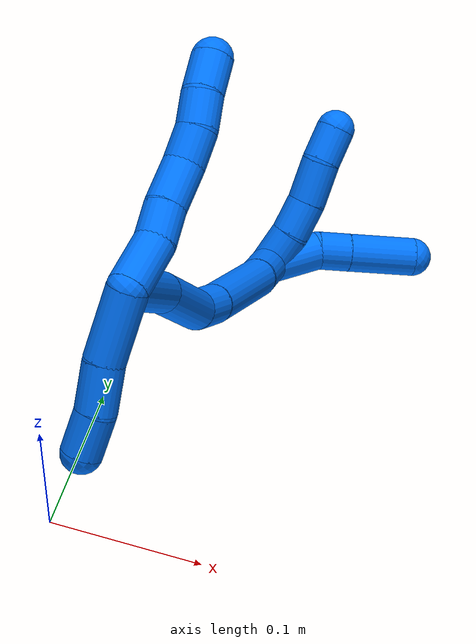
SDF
<sdf version="1.7">
 <world name="default">
  <model name="14">
   <static>0</static>
   <link name="14">
    <collision name="collision-cylinder-e_1_2_8">
     <pose>0.001563 0.009326 0.013755 -0.595826 0.093777 -0.028813</pose>
     <geometry><cylinder><radius>0.0125</radius><length>0.033385</length></cylinder></geometry>
     <surface>
      <friction><ode><mu>1.16</mu><mu2>1.16</mu2><slip1>0</slip1><slip2>0</slip2></ode></friction>
      <contact><ode><kp>1e+06</kp><kd>1</kd><max_vel>0</max_vel><min_depth>0.001</min_depth></ode></contact>
     </surface>
    </collision>
    <visual name="visual-cylinder-e_1_2_8">
     <pose>0.001563 0.009326 0.013755 -0.595826 0.093777 -0.028813</pose>
     <geometry><cylinder><radius>0.0125</radius><length>0.033385</length></cylinder></geometry>
     <material><ambient>0 0.462745 1 1</ambient></material>
    </visual>
    <collision name="collision-cylinder-e_2_8_9">
     <pose>0.001261 0.024887 0.036495 -0.606559 -0.168957 0.052986</pose>
     <geometry><cylinder><radius>0.0125</radius><length>0.022187</length></cylinder></geometry>
     <surface>
      <friction><ode><mu>1.16</mu><mu2>1.16</mu2><slip1>0</slip1><slip2>0</slip2></ode></friction>
      <contact><ode><kp>1e+06</kp><kd>1</kd><max_vel>0</max_vel><min_depth>0.001</min_depth></ode></contact>
     </surface>
    </collision>
    <visual name="visual-cylinder-e_2_8_9">
     <pose>0.001261 0.024887 0.036495 -0.606559 -0.168957 0.052986</pose>
     <geometry><cylinder><radius>0.0125</radius><length>0.022187</length></cylinder></geometry>
     <material><ambient>0 0.462745 1 1</ambient></material>
    </visual>
    <collision name="collision-cylinder-e_3_9_10">
     <pose>-0.001441 0.038524 0.057348 -0.557778 -0.059743 0.017112</pose>
     <geometry><cylinder><radius>0.0125</radius><length>0.028025</length></cylinder></geometry>
     <surface>
      <friction><ode><mu>1.16</mu><mu2>1.16</mu2><slip1>0</slip1><slip2>0</slip2></ode></friction>
      <contact><ode><kp>1e+06</kp><kd>1</kd><max_vel>0</max_vel><min_depth>0.001</min_depth></ode></contact>
     </surface>
    </collision>
    <visual name="visual-cylinder-e_3_9_10">
     <pose>-0.001441 0.038524 0.057348 -0.557778 -0.059743 0.017112</pose>
     <geometry><cylinder><radius>0.0125</radius><length>0.028025</length></cylinder></geometry>
     <material><ambient>0 0.462745 1 1</ambient></material>
    </visual>
    <collision name="collision-cylinder-e_4_10_11">
     <pose>-0.004897 0.050055 0.07896 -0.400596 -0.242629 0.049492</pose>
     <geometry><cylinder><radius>0.0125</radius><length>0.021805</length></cylinder></geometry>
     <surface>
      <friction><ode><mu>1.16</mu><mu2>1.16</mu2><slip1>0</slip1><slip2>0</slip2></ode></friction>
      <contact><ode><kp>1e+06</kp><kd>1</kd><max_vel>0</max_vel><min_depth>0.001</min_depth></ode></contact>
     </surface>
    </collision>
    <visual name="visual-cylinder-e_4_10_11">
     <pose>-0.004897 0.050055 0.07896 -0.400596 -0.242629 0.049492</pose>
     <geometry><cylinder><radius>0.0125</radius><length>0.021805</length></cylinder></geometry>
     <material><ambient>0 0.462745 1 1</ambient></material>
    </visual>
    <collision name="collision-cylinder-e_5_11_12">
     <pose>-0.011002 0.059665 0.097004 -0.583851 -0.337009 0.102156</pose>
     <geometry><cylinder><radius>0.0125</radius><length>0.021079</length></cylinder></geometry>
     <surface>
      <friction><ode><mu>1.16</mu><mu2>1.16</mu2><slip1>0</slip1><slip2>0</slip2></ode></friction>
      <contact><ode><kp>1e+06</kp><kd>1</kd><max_vel>0</max_vel><min_depth>0.001</min_depth></ode></contact>
     </surface>
    </collision>
    <visual name="visual-cylinder-e_5_11_12">
     <pose>-0.011002 0.059665 0.097004 -0.583851 -0.337009 0.102156</pose>
     <geometry><cylinder><radius>0.0125</radius><length>0.021079</length></cylinder></geometry>
     <material><ambient>0 0.462745 1 1</ambient></material>
    </visual>
    <collision name="collision-cylinder-e_6_12_6">
     <pose>-0.01636 0.072204 0.114522 -0.653291 -0.159948 0.05429</pose>
     <geometry><cylinder><radius>0.0125</radius><length>0.02352</length></cylinder></geometry>
     <surface>
      <friction><ode><mu>1.16</mu><mu2>1.16</mu2><slip1>0</slip1><slip2>0</slip2></ode></friction>
      <contact><ode><kp>1e+06</kp><kd>1</kd><max_vel>0</max_vel><min_depth>0.001</min_depth></ode></contact>
     </surface>
    </collision>
    <visual name="visual-cylinder-e_6_12_6">
     <pose>-0.01636 0.072204 0.114522 -0.653291 -0.159948 0.05429</pose>
     <geometry><cylinder><radius>0.0125</radius><length>0.02352</length></cylinder></geometry>
     <material><ambient>0 0.462745 1 1</ambient></material>
    </visual>
    <collision name="collision-cylinder-e_1_2_13">
     <pose>0.010406 -0.000736 -0.01939 3.10366 0.492254 2.99089</pose>
     <geometry><cylinder><radius>0.0125</radius><length>0.044035</length></cylinder></geometry>
     <surface>
      <friction><ode><mu>1.16</mu><mu2>1.16</mu2><slip1>0</slip1><slip2>0</slip2></ode></friction>
      <contact><ode><kp>1e+06</kp><kd>1</kd><max_vel>0</max_vel><min_depth>0.001</min_depth></ode></contact>
     </surface>
    </collision>
    <visual name="visual-cylinder-e_1_2_13">
     <pose>0.010406 -0.000736 -0.01939 3.10366 0.492254 2.99089</pose>
     <geometry><cylinder><radius>0.0125</radius><length>0.044035</length></cylinder></geometry>
     <material><ambient>0 0.462745 1 1</ambient></material>
    </visual>
    <collision name="collision-cylinder-e_2_13_14">
     <pose>0.029295 -0.003022 -0.050744 3.01272 0.612827 2.73921</pose>
     <geometry><cylinder><radius>0.0125</radius><length>0.029498</length></cylinder></geometry>
     <surface>
      <friction><ode><mu>1.16</mu><mu2>1.16</mu2><slip1>0</slip1><slip2>0</slip2></ode></friction>
      <contact><ode><kp>1e+06</kp><kd>1</kd><max_vel>0</max_vel><min_depth>0.001</min_depth></ode></contact>
     </surface>
    </collision>
    <visual name="visual-cylinder-e_2_13_14">
     <pose>0.029295 -0.003022 -0.050744 3.01272 0.612827 2.73921</pose>
     <geometry><cylinder><radius>0.0125</radius><length>0.029498</length></cylinder></geometry>
     <material><ambient>0 0.462745 1 1</ambient></material>
    </visual>
    <collision name="collision-cylinder-e_3_14_5">
     <pose>0.044272 -0.003902 -0.074221 -3.08338 0.512852 -2.9204</pose>
     <geometry><cylinder><radius>0.0125</radius><length>0.026466</length></cylinder></geometry>
     <surface>
      <friction><ode><mu>1.16</mu><mu2>1.16</mu2><slip1>0</slip1><slip2>0</slip2></ode></friction>
      <contact><ode><kp>1e+06</kp><kd>1</kd><max_vel>0</max_vel><min_depth>0.001</min_depth></ode></contact>
     </surface>
    </collision>
    <visual name="visual-cylinder-e_3_14_5">
     <pose>0.044272 -0.003902 -0.074221 -3.08338 0.512852 -2.9204</pose>
     <geometry><cylinder><radius>0.0125</radius><length>0.026466</length></cylinder></geometry>
     <material><ambient>0 0.462745 1 1</ambient></material>
    </visual>
    <collision name="collision-cylinder-e_1_2_15">
     <pose>0.028168 0.032151 0.003093 -1.47488 0.71718 -0.656308</pose>
     <geometry><cylinder><radius>0.0125</radius><length>0.085714</length></cylinder></geometry>
     <surface>
      <friction><ode><mu>1.16</mu><mu2>1.16</mu2><slip1>0</slip1><slip2>0</slip2></ode></friction>
      <contact><ode><kp>1e+06</kp><kd>1</kd><max_vel>0</max_vel><min_depth>0.001</min_depth></ode></contact>
     </surface>
    </collision>
    <visual name="visual-cylinder-e_1_2_15">
     <pose>0.028168 0.032151 0.003093 -1.47488 0.71718 -0.656308</pose>
     <geometry><cylinder><radius>0.0125</radius><length>0.085714</length></cylinder></geometry>
     <material><ambient>0 0.462745 1 1</ambient></material>
    </visual>
    <collision name="collision-cylinder-e_2_15_16">
     <pose>0.08279 0.085813 0.007923 -1.49025 0.886505 -0.825631</pose>
     <geometry><cylinder><radius>0.0125</radius><length>0.068278</length></cylinder></geometry>
     <surface>
      <friction><ode><mu>1.16</mu><mu2>1.16</mu2><slip1>0</slip1><slip2>0</slip2></ode></friction>
      <contact><ode><kp>1e+06</kp><kd>1</kd><max_vel>0</max_vel><min_depth>0.001</min_depth></ode></contact>
     </surface>
    </collision>
    <visual name="visual-cylinder-e_2_15_16">
     <pose>0.08279 0.085813 0.007923 -1.49025 0.886505 -0.825631</pose>
     <geometry><cylinder><radius>0.0125</radius><length>0.068278</length></cylinder></geometry>
     <material><ambient>0 0.462745 1 1</ambient></material>
    </visual>
    <collision name="collision-cylinder-e_3_16_17">
     <pose>0.117671 0.115587 0.014131 -1.07488 0.731109 -0.448538</pose>
     <geometry><cylinder><radius>0.0125</radius><length>0.025244</length></cylinder></geometry>
     <surface>
      <friction><ode><mu>1.16</mu><mu2>1.16</mu2><slip1>0</slip1><slip2>0</slip2></ode></friction>
      <contact><ode><kp>1e+06</kp><kd>1</kd><max_vel>0</max_vel><min_depth>0.001</min_depth></ode></contact>
     </surface>
    </collision>
    <visual name="visual-cylinder-e_3_16_17">
     <pose>0.117671 0.115587 0.014131 -1.07488 0.731109 -0.448538</pose>
     <geometry><cylinder><radius>0.0125</radius><length>0.025244</length></cylinder></geometry>
     <material><ambient>0 0.462745 1 1</ambient></material>
    </visual>
    <collision name="collision-cylinder-e_4_17_18">
     <pose>0.149644 0.153001 0.032647 -1.12177 0.629059 -0.403182</pose>
     <geometry><cylinder><radius>0.0125</radius><length>0.080033</length></cylinder></geometry>
     <surface>
      <friction><ode><mu>1.16</mu><mu2>1.16</mu2><slip1>0</slip1><slip2>0</slip2></ode></friction>
      <contact><ode><kp>1e+06</kp><kd>1</kd><max_vel>0</max_vel><min_depth>0.001</min_depth></ode></contact>
     </surface>
    </collision>
    <visual name="visual-cylinder-e_4_17_18">
     <pose>0.149644 0.153001 0.032647 -1.12177 0.629059 -0.403182</pose>
     <geometry><cylinder><radius>0.0125</radius><length>0.080033</length></cylinder></geometry>
     <material><ambient>0 0.462745 1 1</ambient></material>
    </visual>
    <collision name="collision-cylinder-e_5_18_1">
     <pose>0.183591 0.198876 0.05187 -1.27062 0.536082 -0.399585</pose>
     <geometry><cylinder><radius>0.0125</radius><length>0.04073</length></cylinder></geometry>
     <surface>
      <friction><ode><mu>1.16</mu><mu2>1.16</mu2><slip1>0</slip1><slip2>0</slip2></ode></friction>
      <contact><ode><kp>1e+06</kp><kd>1</kd><max_vel>0</max_vel><min_depth>0.001</min_depth></ode></contact>
     </surface>
    </collision>
    <visual name="visual-cylinder-e_5_18_1">
     <pose>0.183591 0.198876 0.05187 -1.27062 0.536082 -0.399585</pose>
     <geometry><cylinder><radius>0.0125</radius><length>0.04073</length></cylinder></geometry>
     <material><ambient>0 0.462745 1 1</ambient></material>
    </visual>
    <collision name="collision-cylinder-e_1_1_19">
     <pose>0.191335 0.215117 0.069337 0.039377 -0.212777 -0.004206</pose>
     <geometry><cylinder><radius>0.0125</radius><length>0.025167</length></cylinder></geometry>
     <surface>
      <friction><ode><mu>1.16</mu><mu2>1.16</mu2><slip1>0</slip1><slip2>0</slip2></ode></friction>
      <contact><ode><kp>1e+06</kp><kd>1</kd><max_vel>0</max_vel><min_depth>0.001</min_depth></ode></contact>
     </surface>
    </collision>
    <visual name="visual-cylinder-e_1_1_19">
     <pose>0.191335 0.215117 0.069337 0.039377 -0.212777 -0.004206</pose>
     <geometry><cylinder><radius>0.0125</radius><length>0.025167</length></cylinder></geometry>
     <material><ambient>0 0.462745 1 1</ambient></material>
    </visual>
    <collision name="collision-cylinder-e_2_19_20">
     <pose>0.185412 0.215842 0.092821 -0.107626 -0.282333 0.015309</pose>
     <geometry><cylinder><radius>0.0125</radius><length>0.023447</length></cylinder></geometry>
     <surface>
      <friction><ode><mu>1.16</mu><mu2>1.16</mu2><slip1>0</slip1><slip2>0</slip2></ode></friction>
      <contact><ode><kp>1e+06</kp><kd>1</kd><max_vel>0</max_vel><min_depth>0.001</min_depth></ode></contact>
     </surface>
    </collision>
    <visual name="visual-cylinder-e_2_19_20">
     <pose>0.185412 0.215842 0.092821 -0.107626 -0.282333 0.015309</pose>
     <geometry><cylinder><radius>0.0125</radius><length>0.023447</length></cylinder></geometry>
     <material><ambient>0 0.462745 1 1</ambient></material>
    </visual>
    <collision name="collision-cylinder-e_3_20_21">
     <pose>0.17634 0.2187 0.11672 -0.129009 -0.425518 0.027907</pose>
     <geometry><cylinder><radius>0.0125</radius><length>0.02813</length></cylinder></geometry>
     <surface>
      <friction><ode><mu>1.16</mu><mu2>1.16</mu2><slip1>0</slip1><slip2>0</slip2></ode></friction>
      <contact><ode><kp>1e+06</kp><kd>1</kd><max_vel>0</max_vel><min_depth>0.001</min_depth></ode></contact>
     </surface>
    </collision>
    <visual name="visual-cylinder-e_3_20_21">
     <pose>0.17634 0.2187 0.11672 -0.129009 -0.425518 0.027907</pose>
     <geometry><cylinder><radius>0.0125</radius><length>0.02813</length></cylinder></geometry>
     <material><ambient>0 0.462745 1 1</ambient></material>
    </visual>
    <collision name="collision-cylinder-e_4_21_4">
     <pose>0.167611 0.223152 0.140324 -0.251791 -0.254065 0.032327</pose>
     <geometry><cylinder><radius>0.0125</radius><length>0.023255</length></cylinder></geometry>
     <surface>
      <friction><ode><mu>1.16</mu><mu2>1.16</mu2><slip1>0</slip1><slip2>0</slip2></ode></friction>
      <contact><ode><kp>1e+06</kp><kd>1</kd><max_vel>0</max_vel><min_depth>0.001</min_depth></ode></contact>
     </surface>
    </collision>
    <visual name="visual-cylinder-e_4_21_4">
     <pose>0.167611 0.223152 0.140324 -0.251791 -0.254065 0.032327</pose>
     <geometry><cylinder><radius>0.0125</radius><length>0.023255</length></cylinder></geometry>
     <material><ambient>0 0.462745 1 1</ambient></material>
    </visual>
    <collision name="collision-cylinder-e_1_1_22">
     <pose>0.203754 0.21535 0.071584 0.017252 0.591255 0.005254</pose>
     <geometry><cylinder><radius>0.0125</radius><length>0.035026</length></cylinder></geometry>
     <surface>
      <friction><ode><mu>1.16</mu><mu2>1.16</mu2><slip1>0</slip1><slip2>0</slip2></ode></friction>
      <contact><ode><kp>1e+06</kp><kd>1</kd><max_vel>0</max_vel><min_depth>0.001</min_depth></ode></contact>
     </surface>
    </collision>
    <visual name="visual-cylinder-e_1_1_22">
     <pose>0.203754 0.21535 0.071584 0.017252 0.591255 0.005254</pose>
     <geometry><cylinder><radius>0.0125</radius><length>0.035026</length></cylinder></geometry>
     <material><ambient>0 0.462745 1 1</ambient></material>
    </visual>
    <collision name="collision-cylinder-e_2_22_23">
     <pose>0.221389 0.212905 0.092653 0.324136 0.85194 0.148108</pose>
     <geometry><cylinder><radius>0.0125</radius><length>0.020923</length></cylinder></geometry>
     <surface>
      <friction><ode><mu>1.16</mu><mu2>1.16</mu2><slip1>0</slip1><slip2>0</slip2></ode></friction>
      <contact><ode><kp>1e+06</kp><kd>1</kd><max_vel>0</max_vel><min_depth>0.001</min_depth></ode></contact>
     </surface>
    </collision>
    <visual name="visual-cylinder-e_2_22_23">
     <pose>0.221389 0.212905 0.092653 0.324136 0.85194 0.148108</pose>
     <geometry><cylinder><radius>0.0125</radius><length>0.020923</length></cylinder></geometry>
     <material><ambient>0 0.462745 1 1</ambient></material>
    </visual>
    <collision name="collision-cylinder-e_3_23_3">
     <pose>0.245845 0.206236 0.112971 0.313833 0.852455 0.143435</pose>
     <geometry><cylinder><radius>0.0125</radius><length>0.044051</length></cylinder></geometry>
     <surface>
      <friction><ode><mu>1.16</mu><mu2>1.16</mu2><slip1>0</slip1><slip2>0</slip2></ode></friction>
      <contact><ode><kp>1e+06</kp><kd>1</kd><max_vel>0</max_vel><min_depth>0.001</min_depth></ode></contact>
     </surface>
    </collision>
    <visual name="visual-cylinder-e_3_23_3">
     <pose>0.245845 0.206236 0.112971 0.313833 0.852455 0.143435</pose>
     <geometry><cylinder><radius>0.0125</radius><length>0.044051</length></cylinder></geometry>
     <material><ambient>0 0.462745 1 1</ambient></material>
    </visual>
    <collision name="collision-sphere-3">
     <pose>0.262428 0.201761 0.126759 0 -0 0</pose>
     <geometry><sphere><radius>0.0125</radius></sphere></geometry>
     <surface>
      <friction><ode><mu>1.16</mu><mu2>1.16</mu2><slip1>0</slip1><slip2>0</slip2></ode></friction>
      <contact><ode><kp>1e+06</kp><kd>1</kd><max_vel>0</max_vel><min_depth>0.001</min_depth></ode></contact>
     </surface>
    </collision>
    <visual name="visual-sphere-3">
     <pose>0.262428 0.201761 0.126759 0 -0 0</pose>
     <geometry><sphere><radius>0.0125</radius></sphere></geometry>
     <material><ambient>0 0.462745 1 1</ambient></material>
    </visual>
    <collision name="collision-sphere-23">
     <pose>0.229262 0.210711 0.099183 0 -0 0</pose>
     <geometry><sphere><radius>0.0125</radius></sphere></geometry>
     <surface>
      <friction><ode><mu>1.16</mu><mu2>1.16</mu2><slip1>0</slip1><slip2>0</slip2></ode></friction>
      <contact><ode><kp>1e+06</kp><kd>1</kd><max_vel>0</max_vel><min_depth>0.001</min_depth></ode></contact>
     </surface>
    </collision>
    <visual name="visual-sphere-23">
     <pose>0.229262 0.210711 0.099183 0 -0 0</pose>
     <geometry><sphere><radius>0.0125</radius></sphere></geometry>
     <material><ambient>0 0.462745 1 1</ambient></material>
    </visual>
    <collision name="collision-sphere-22">
     <pose>0.213516 0.215099 0.086122 0 -0 0</pose>
     <geometry><sphere><radius>0.0125</radius></sphere></geometry>
     <surface>
      <friction><ode><mu>1.16</mu><mu2>1.16</mu2><slip1>0</slip1><slip2>0</slip2></ode></friction>
      <contact><ode><kp>1e+06</kp><kd>1</kd><max_vel>0</max_vel><min_depth>0.001</min_depth></ode></contact>
     </surface>
    </collision>
    <visual name="visual-sphere-22">
     <pose>0.213516 0.215099 0.086122 0 -0 0</pose>
     <geometry><sphere><radius>0.0125</radius></sphere></geometry>
     <material><ambient>0 0.462745 1 1</ambient></material>
    </visual>
    <collision name="collision-sphere-4">
     <pose>0.164689 0.225955 0.151224 0 -0 0</pose>
     <geometry><sphere><radius>0.0125</radius></sphere></geometry>
     <surface>
      <friction><ode><mu>1.16</mu><mu2>1.16</mu2><slip1>0</slip1><slip2>0</slip2></ode></friction>
      <contact><ode><kp>1e+06</kp><kd>1</kd><max_vel>0</max_vel><min_depth>0.001</min_depth></ode></contact>
     </surface>
    </collision>
    <visual name="visual-sphere-4">
     <pose>0.164689 0.225955 0.151224 0 -0 0</pose>
     <geometry><sphere><radius>0.0125</radius></sphere></geometry>
     <material><ambient>0 0.462745 1 1</ambient></material>
    </visual>
    <collision name="collision-sphere-21">
     <pose>0.170534 0.220348 0.129425 0 -0 0</pose>
     <geometry><sphere><radius>0.0125</radius></sphere></geometry>
     <surface>
      <friction><ode><mu>1.16</mu><mu2>1.16</mu2><slip1>0</slip1><slip2>0</slip2></ode></friction>
      <contact><ode><kp>1e+06</kp><kd>1</kd><max_vel>0</max_vel><min_depth>0.001</min_depth></ode></contact>
     </surface>
    </collision>
    <visual name="visual-sphere-21">
     <pose>0.170534 0.220348 0.129425 0 -0 0</pose>
     <geometry><sphere><radius>0.0125</radius></sphere></geometry>
     <material><ambient>0 0.462745 1 1</ambient></material>
    </visual>
    <collision name="collision-sphere-20">
     <pose>0.182146 0.217051 0.104016 0 -0 0</pose>
     <geometry><sphere><radius>0.0125</radius></sphere></geometry>
     <surface>
      <friction><ode><mu>1.16</mu><mu2>1.16</mu2><slip1>0</slip1><slip2>0</slip2></ode></friction>
      <contact><ode><kp>1e+06</kp><kd>1</kd><max_vel>0</max_vel><min_depth>0.001</min_depth></ode></contact>
     </surface>
    </collision>
    <visual name="visual-sphere-20">
     <pose>0.182146 0.217051 0.104016 0 -0 0</pose>
     <geometry><sphere><radius>0.0125</radius></sphere></geometry>
     <material><ambient>0 0.462745 1 1</ambient></material>
    </visual>
    <collision name="collision-sphere-12">
     <pose>-0.014487 0.065148 0.105303 0 -0 0</pose>
     <geometry><sphere><radius>0.0125</radius></sphere></geometry>
     <surface>
      <friction><ode><mu>1.16</mu><mu2>1.16</mu2><slip1>0</slip1><slip2>0</slip2></ode></friction>
      <contact><ode><kp>1e+06</kp><kd>1</kd><max_vel>0</max_vel><min_depth>0.001</min_depth></ode></contact>
     </surface>
    </collision>
    <visual name="visual-sphere-12">
     <pose>-0.014487 0.065148 0.105303 0 -0 0</pose>
     <geometry><sphere><radius>0.0125</radius></sphere></geometry>
     <material><ambient>0 0.462745 1 1</ambient></material>
    </visual>
    <collision name="collision-sphere-11">
     <pose>-0.007517 0.054182 0.088705 0 -0 0</pose>
     <geometry><sphere><radius>0.0125</radius></sphere></geometry>
     <surface>
      <friction><ode><mu>1.16</mu><mu2>1.16</mu2><slip1>0</slip1><slip2>0</slip2></ode></friction>
      <contact><ode><kp>1e+06</kp><kd>1</kd><max_vel>0</max_vel><min_depth>0.001</min_depth></ode></contact>
     </surface>
    </collision>
    <visual name="visual-sphere-11">
     <pose>-0.007517 0.054182 0.088705 0 -0 0</pose>
     <geometry><sphere><radius>0.0125</radius></sphere></geometry>
     <material><ambient>0 0.462745 1 1</ambient></material>
    </visual>
    <collision name="collision-sphere-10">
     <pose>-0.002278 0.045928 0.069215 0 -0 0</pose>
     <geometry><sphere><radius>0.0125</radius></sphere></geometry>
     <surface>
      <friction><ode><mu>1.16</mu><mu2>1.16</mu2><slip1>0</slip1><slip2>0</slip2></ode></friction>
      <contact><ode><kp>1e+06</kp><kd>1</kd><max_vel>0</max_vel><min_depth>0.001</min_depth></ode></contact>
     </surface>
    </collision>
    <visual name="visual-sphere-10">
     <pose>-0.002278 0.045928 0.069215 0 -0 0</pose>
     <geometry><sphere><radius>0.0125</radius></sphere></geometry>
     <material><ambient>0 0.462745 1 1</ambient></material>
    </visual>
    <collision name="collision-sphere-9">
     <pose>-0.000605 0.03112 0.04548 0 -0 0</pose>
     <geometry><sphere><radius>0.0125</radius></sphere></geometry>
     <surface>
      <friction><ode><mu>1.16</mu><mu2>1.16</mu2><slip1>0</slip1><slip2>0</slip2></ode></friction>
      <contact><ode><kp>1e+06</kp><kd>1</kd><max_vel>0</max_vel><min_depth>0.001</min_depth></ode></contact>
     </surface>
    </collision>
    <visual name="visual-sphere-9">
     <pose>-0.000605 0.03112 0.04548 0 -0 0</pose>
     <geometry><sphere><radius>0.0125</radius></sphere></geometry>
     <material><ambient>0 0.462745 1 1</ambient></material>
    </visual>
    <collision name="collision-sphere-2">
     <geometry><sphere><radius>0.0125</radius></sphere></geometry>
     <surface>
      <friction><ode><mu>1.16</mu><mu2>1.16</mu2><slip1>0</slip1><slip2>0</slip2></ode></friction>
      <contact><ode><kp>1e+06</kp><kd>1</kd><max_vel>0</max_vel><min_depth>0.001</min_depth></ode></contact>
     </surface>
    </collision>
    <visual name="visual-sphere-2">
     <geometry><sphere><radius>0.0125</radius></sphere></geometry>
     <material><ambient>0 0.462745 1 1</ambient></material>
    </visual>
    <collision name="collision-sphere-19">
     <pose>0.188678 0.214632 0.081627 0 -0 0</pose>
     <geometry><sphere><radius>0.0125</radius></sphere></geometry>
     <surface>
      <friction><ode><mu>1.16</mu><mu2>1.16</mu2><slip1>0</slip1><slip2>0</slip2></ode></friction>
      <contact><ode><kp>1e+06</kp><kd>1</kd><max_vel>0</max_vel><min_depth>0.001</min_depth></ode></contact>
     </surface>
    </collision>
    <visual name="visual-sphere-19">
     <pose>0.188678 0.214632 0.081627 0 -0 0</pose>
     <geometry><sphere><radius>0.0125</radius></sphere></geometry>
     <material><ambient>0 0.462745 1 1</ambient></material>
    </visual>
    <collision name="collision-sphere-8">
     <pose>0.003126 0.018653 0.027511 0 -0 0</pose>
     <geometry><sphere><radius>0.0125</radius></sphere></geometry>
     <surface>
      <friction><ode><mu>1.16</mu><mu2>1.16</mu2><slip1>0</slip1><slip2>0</slip2></ode></friction>
      <contact><ode><kp>1e+06</kp><kd>1</kd><max_vel>0</max_vel><min_depth>0.001</min_depth></ode></contact>
     </surface>
    </collision>
    <visual name="visual-sphere-8">
     <pose>0.003126 0.018653 0.027511 0 -0 0</pose>
     <geometry><sphere><radius>0.0125</radius></sphere></geometry>
     <material><ambient>0 0.462745 1 1</ambient></material>
    </visual>
    <collision name="collision-sphere-6">
     <pose>-0.018233 0.079261 0.123742 0 -0 0</pose>
     <geometry><sphere><radius>0.0125</radius></sphere></geometry>
     <surface>
      <friction><ode><mu>1.16</mu><mu2>1.16</mu2><slip1>0</slip1><slip2>0</slip2></ode></friction>
      <contact><ode><kp>1e+06</kp><kd>1</kd><max_vel>0</max_vel><min_depth>0.001</min_depth></ode></contact>
     </surface>
    </collision>
    <visual name="visual-sphere-6">
     <pose>-0.018233 0.079261 0.123742 0 -0 0</pose>
     <geometry><sphere><radius>0.0125</radius></sphere></geometry>
     <material><ambient>0 0.462745 1 1</ambient></material>
    </visual>
    <collision name="collision-sphere-13">
     <pose>0.020812 -0.001472 -0.038779 0 -0 0</pose>
     <geometry><sphere><radius>0.0125</radius></sphere></geometry>
     <surface>
      <friction><ode><mu>1.16</mu><mu2>1.16</mu2><slip1>0</slip1><slip2>0</slip2></ode></friction>
      <contact><ode><kp>1e+06</kp><kd>1</kd><max_vel>0</max_vel><min_depth>0.001</min_depth></ode></contact>
     </surface>
    </collision>
    <visual name="visual-sphere-13">
     <pose>0.020812 -0.001472 -0.038779 0 -0 0</pose>
     <geometry><sphere><radius>0.0125</radius></sphere></geometry>
     <material><ambient>0 0.462745 1 1</ambient></material>
    </visual>
    <collision name="collision-sphere-14">
     <pose>0.037779 -0.004573 -0.062709 0 -0 0</pose>
     <geometry><sphere><radius>0.0125</radius></sphere></geometry>
     <surface>
      <friction><ode><mu>1.16</mu><mu2>1.16</mu2><slip1>0</slip1><slip2>0</slip2></ode></friction>
      <contact><ode><kp>1e+06</kp><kd>1</kd><max_vel>0</max_vel><min_depth>0.001</min_depth></ode></contact>
     </surface>
    </collision>
    <visual name="visual-sphere-14">
     <pose>0.037779 -0.004573 -0.062709 0 -0 0</pose>
     <geometry><sphere><radius>0.0125</radius></sphere></geometry>
     <material><ambient>0 0.462745 1 1</ambient></material>
    </visual>
    <collision name="collision-sphere-5">
     <pose>0.050765 -0.003231 -0.085732 0 -0 0</pose>
     <geometry><sphere><radius>0.0125</radius></sphere></geometry>
     <surface>
      <friction><ode><mu>1.16</mu><mu2>1.16</mu2><slip1>0</slip1><slip2>0</slip2></ode></friction>
      <contact><ode><kp>1e+06</kp><kd>1</kd><max_vel>0</max_vel><min_depth>0.001</min_depth></ode></contact>
     </surface>
    </collision>
    <visual name="visual-sphere-5">
     <pose>0.050765 -0.003231 -0.085732 0 -0 0</pose>
     <geometry><sphere><radius>0.0125</radius></sphere></geometry>
     <material><ambient>0 0.462745 1 1</ambient></material>
    </visual>
    <collision name="collision-sphere-15">
     <pose>0.056337 0.064303 0.006187 0 -0 0</pose>
     <geometry><sphere><radius>0.0125</radius></sphere></geometry>
     <surface>
      <friction><ode><mu>1.16</mu><mu2>1.16</mu2><slip1>0</slip1><slip2>0</slip2></ode></friction>
      <contact><ode><kp>1e+06</kp><kd>1</kd><max_vel>0</max_vel><min_depth>0.001</min_depth></ode></contact>
     </surface>
    </collision>
    <visual name="visual-sphere-15">
     <pose>0.056337 0.064303 0.006187 0 -0 0</pose>
     <geometry><sphere><radius>0.0125</radius></sphere></geometry>
     <material><ambient>0 0.462745 1 1</ambient></material>
    </visual>
    <collision name="collision-sphere-16">
     <pose>0.109243 0.107323 0.009659 0 -0 0</pose>
     <geometry><sphere><radius>0.0125</radius></sphere></geometry>
     <surface>
      <friction><ode><mu>1.16</mu><mu2>1.16</mu2><slip1>0</slip1><slip2>0</slip2></ode></friction>
      <contact><ode><kp>1e+06</kp><kd>1</kd><max_vel>0</max_vel><min_depth>0.001</min_depth></ode></contact>
     </surface>
    </collision>
    <visual name="visual-sphere-16">
     <pose>0.109243 0.107323 0.009659 0 -0 0</pose>
     <geometry><sphere><radius>0.0125</radius></sphere></geometry>
     <material><ambient>0 0.462745 1 1</ambient></material>
    </visual>
    <collision name="collision-sphere-17">
     <pose>0.126099 0.123852 0.018602 0 -0 0</pose>
     <geometry><sphere><radius>0.0125</radius></sphere></geometry>
     <surface>
      <friction><ode><mu>1.16</mu><mu2>1.16</mu2><slip1>0</slip1><slip2>0</slip2></ode></friction>
      <contact><ode><kp>1e+06</kp><kd>1</kd><max_vel>0</max_vel><min_depth>0.001</min_depth></ode></contact>
     </surface>
    </collision>
    <visual name="visual-sphere-17">
     <pose>0.126099 0.123852 0.018602 0 -0 0</pose>
     <geometry><sphere><radius>0.0125</radius></sphere></geometry>
     <material><ambient>0 0.462745 1 1</ambient></material>
    </visual>
    <collision name="collision-sphere-18">
     <pose>0.173189 0.18215 0.046693 0 -0 0</pose>
     <geometry><sphere><radius>0.0125</radius></sphere></geometry>
     <surface>
      <friction><ode><mu>1.16</mu><mu2>1.16</mu2><slip1>0</slip1><slip2>0</slip2></ode></friction>
      <contact><ode><kp>1e+06</kp><kd>1</kd><max_vel>0</max_vel><min_depth>0.001</min_depth></ode></contact>
     </surface>
    </collision>
    <visual name="visual-sphere-18">
     <pose>0.173189 0.18215 0.046693 0 -0 0</pose>
     <geometry><sphere><radius>0.0125</radius></sphere></geometry>
     <material><ambient>0 0.462745 1 1</ambient></material>
    </visual>
    <collision name="collision-sphere-1">
     <pose>0.193993 0.215601 0.057047 0 -0 0</pose>
     <geometry><sphere><radius>0.0125</radius></sphere></geometry>
     <surface>
      <friction><ode><mu>1.16</mu><mu2>1.16</mu2><slip1>0</slip1><slip2>0</slip2></ode></friction>
      <contact><ode><kp>1e+06</kp><kd>1</kd><max_vel>0</max_vel><min_depth>0.001</min_depth></ode></contact>
     </surface>
    </collision>
    <visual name="visual-sphere-1">
     <pose>0.193993 0.215601 0.057047 0 -0 0</pose>
     <geometry><sphere><radius>0.0125</radius></sphere></geometry>
     <material><ambient>0 0.462745 1 1</ambient></material>
    </visual>
    <inertial>
     <pose>0.097229 0.10739 0.041066 0 -0 0</pose>
     <mass>0.75</mass>
     <inertia>
      <ixx>7.6e-05</ixx>
      <ixy>0</ixy>
      <ixz>0</ixz>
      <iyy>9.7e-05</iyy>
      <iyz>0</iyz>
      <izz>-0.000192</izz>
     </inertia>
    </inertial>
   </link>
   <pose>0.056408 0.014648 0.249316 -0.761329 0.889426 0.095865</pose>
  </model>
 </world>
</sdf>
